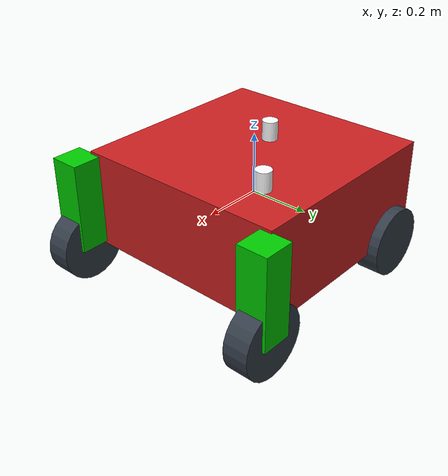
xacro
<?xml version="1.0"?>
<robot name="mpdr" xmlns:xacro="http://www.ros.org/wiki/xacro">

	<xacro:include filename="$(find qusai_test)/urdf/macros.xacro" />

	<xacro:include filename="$(find qusai_test)/urdf/materials.xacro" />

	<xacro:include filename="$(find qusai_test)/urdf/mpdr.gazebo" />

    <link name="base_link">
        <visual>
            <geometry>
                <box size="0.7112 0.7112 0.3175"/>
            </geometry>
            <material name="red"/>
        </visual>
        <collision>
            <geometry>
                <box size="0.7112 0.7112 0.3175"/>
            </geometry>
        </collision>
        <inertial>
            <mass value="48.35"/>
            <inertia ixx="0.5367343572916666" iyy="0.5367343572916666" izz="0.9871458333333333"
                     ixy="0" ixz="0" iyz="0"/>
        </inertial>
    </link>

    <link name="laser">
	<visual>
            <geometry>
		 <cylinder radius="0.0254" length="0.0635"/>
	    </geometry>
	    <material name="white" />
	</visual>
	<collision>
             <geometry>
                  <cylinder radius="0.0254" length="0.0635"/>
             </geometry>
        </collision>
        <inertial>
             <origin xyz="0 0 0" rpy="0 0 0" />
             <mass value="1" />
             <xacro:cylinder_inertia mass="1" r="0.05" l="0.1" />
        </inertial>
    </link>

    <joint name="joint_sensor_laser" type="fixed">
           <origin xyz="-0.0762 0 0.1905" rpy="0 0 0"/>
           <parent link="base_link"/>
           <child link="laser"/>
    </joint>

    <link name="odom_frame">
	<visual>
            <geometry>
		 <cylinder radius="0.0254" length="0.0635"/>
	    </geometry>
	    <material name="white" />
	</visual>
	<collision>
             <geometry>
                  <cylinder radius="0.0254" length="0.0635"/>
             </geometry>
        </collision>
        <inertial>
             <origin xyz="0 0 0" rpy="0 0 0" />
             <mass value="1" />
             <xacro:cylinder_inertia mass="1" r="0.05" l="0.1" />
        </inertial>
    </link>

    <joint name="joint_odom" type="fixed">
           <origin xyz="0.2 0.2 0.1905" rpy="0 0 0"/>
           <parent link="base_link"/>
           <child link="odom_frame"/>
    </joint>

    <xacro:caster name="right_caster"/>
    <xacro:caster_joint name="right_caster_joint" parent="base_link" child="right_caster" origin_xyz="0.4 0.3675 0"/>

    <xacro:caster name="left_caster"/>
    <xacro:caster_joint name="left_caster_joint" parent="base_link" child="left_caster" origin_xyz="0.4 -0.3675 0"/>

    <xacro:link_wheel name="back_left_wheel"/>
    <xacro:wheel_joint name="back_left_wheel_joint" parent="left_caster" child="back_left_wheel" origin_xyz="0 0 -0.15"/>

    <xacro:link_wheel name="back_right_wheel"/>
    <xacro:wheel_joint name="back_right_wheel_joint" parent="right_caster" child="back_right_wheel" origin_xyz="0 0 -0.15"/>

    <xacro:link_wheel name="front_left_wheel"/>
    <xacro:wheel_joint name="front_left_wheel_joint" parent="base_link" child="front_left_wheel" origin_xyz="-0.25 0.35 -0.15"/>

    <xacro:link_wheel name="front_right_wheel"/>
    <xacro:wheel_joint name="front_right_wheel_joint" parent="base_link" child="front_right_wheel" origin_xyz="-0.25 -0.35 -0.15"/>

</robot>

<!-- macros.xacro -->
<robot xmlns:xacro="http://wiki.ros.org/xacro">

	<xacro:macro name="link_wheel" params="name">
	    <link name="${name}">
		<visual>
		    <geometry>
		        <cylinder length="0.08128" radius="0.1143"/>
		    </geometry>
		    <material name="blue"/>
		</visual>
		<collision>
		    <geometry>
		        <cylinder length="0.08128" radius="0.1143"/>
		    </geometry>
		</collision>
		<inertial>
		    <mass value="0.5"/>
		    <inertia ixx="0.0011541666666666666" iyy="0.0011541666666666666" izz="0.0009"
		             ixy="0" ixz="0" iyz="0"/>
		</inertial>
	    </link>
	</xacro:macro>

	<xacro:macro name="caster" params="name">
	    <link name="${name}">
		<visual>
		    <geometry>
		        <box size="0.1 0.1 0.3"/>
		    </geometry>
		    <material name="green"/>
		</visual>
		<collision>
		    <geometry>
		        <box size="0.1 0.1 0.3"/>
		    </geometry>
		</collision>
		<inertial>
		    <mass value="0.1"/>
		    <inertia ixx="0.0008333333333333334" iyy="0.0008333333333333334" izz="0.0001666666666666667"
		             ixy="0" ixz="0" iyz="0"/>
		</inertial>
	    </link>
       </xacro:macro>

       <xacro:macro name="wheel_joint" params="name parent child origin_xyz">
       <joint name="${name}" type="continuous">
		<axis xyz="0 0 1"/>
		<parent link="${parent}"/>
		<child link="${child}"/>
		<origin rpy="-1.5708 0 0" xyz="${origin_xyz}"/>
    	</joint>
       </xacro:macro>

       <xacro:macro name="caster_joint" params="name parent child origin_xyz">
       <joint name="${name}" type="continuous">
	       <axis xyz="0 0 1"/>
	       <parent link="${parent}"/>
	       <child link="${child}"/>
	       <origin rpy="0 0 0" xyz="${origin_xyz}"/>
       </joint>
       </xacro:macro>

       <xacro:macro name="cylinder_inertia" params="mass r l">
             <inertia  ixx="${mass*(3*r*r+l*l)/12}" ixy = "0" ixz = "0"
                       iyy="${mass*(3*r*r+l*l)/12}" iyz = "0"
                       izz="${mass*(r*r)/2}" />
	</xacro:macro>

</robot>

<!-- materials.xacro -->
<robot>
	<material name="black">
		<color rgba="0.0 0.0 0.0 1.0"/>
	</material>

	<material name="blue">
		<color rgba="0.203125 0.23828125 0.28515625 1.0"/>
	</material>

	<material name="green">
		<color rgba="0.0 0.8 0.0 1.0"/>
	</material>

	<material name="grey">
		<color rgba="0.2 0.2 0.2 1.0"/>
	</material>

	<material name="orange">
		<color rgba="1.0 0.423529411765 0.0392156862745 1.0"/>
	</material>

	<material name="brown">
		<color rgba="0.870588235294 0.811764705882 0.764705882353 1.0"/>
	</material>

	<material name="red">
		<color rgba="0.80078125 0.12890625 0.1328125 1.0"/>
	</material>

	<material name="white">
		<color rgba="1.0 1.0 1.0 1.0"/>
	</material>

</robot>
